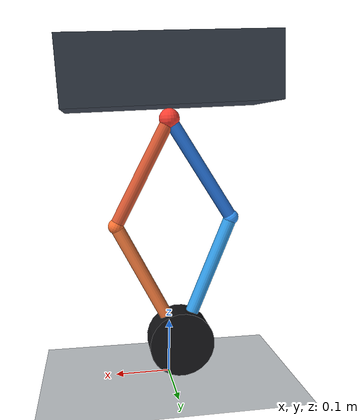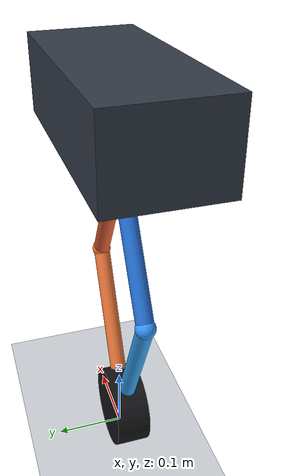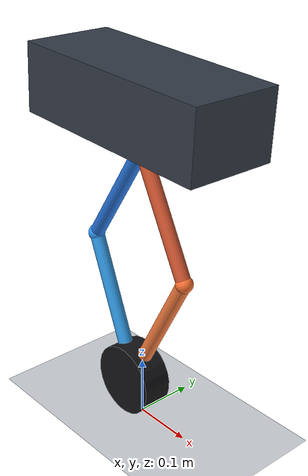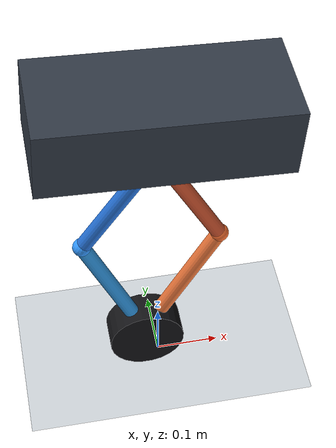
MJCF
<mujoco model="five_link_wheel_leg_2d_fall_test">
  <compiler angle="degree" autolimits="true"/>

  <option timestep="0.001"
          gravity="0 0 -9.81"
          integrator="implicitfast"
          solver="Newton"
          iterations="100"/>

  <visual>
    <headlight ambient="0.35 0.35 0.35" diffuse="0.8 0.8 0.8" specular="0.2 0.2 0.2"/>
    <rgba joint="0.2 0.7 1 1" actuator="0.3 0.8 0.3 1"/>
  </visual>

  <default>
    <joint type="hinge"
           axis="0 1 0"
           damping="0.02"
           armature="0.0005"
           limited="false"/>
    <geom contype="0" conaffinity="1"
          friction="0.8 0.02 0.001"
          condim="3"/>
  </default>

  <worldbody>
    <light name="top_light" pos="0 -1 2" dir="0 0 -1"/>
    <camera name="side" pos="1.25 -1.8 0.85" xyaxes="0.82 0.57 0 -0.22 0.32 0.92"/>

    <geom name="ground"
          type="plane"
          pos="0 0 0"
          size="2 2 0.1"
          rgba="0.82 0.84 0.86 1"
          contype="1" conaffinity="0"/>
    <body name="chassis" pos="0 0 0.4687463609" euler="0 3 0">
      <joint name="base_x"
             type="slide"
             axis="1 0 0"
             damping="0.05"
             limited="false"/>

      <joint name="base_z"
             type="slide"
             axis="0 0 1"
             damping="0.05"
             limited="false"/>

      <joint name="base_pitch"
             type="hinge"
             axis="0 1 0"
             ref="3"
             damping="0.02"
             armature="0.001"
             limited="false"/>

      <geom name="chassis_geom"
            type="box"
            pos="0 0 0.075"
            size="0.18 0.075 0.055"
            mass="18.9"
            rgba="0.20 0.23 0.28 1"/>

      <site name="hip_AE" type="sphere" pos="0 0 0" size="0.018" rgba="1 0.25 0.2 1"/>
      <body name="link_AB" pos="0 0 0" euler="0 120 0">
        <joint name="q1" pos="0 0 0" axis="0 1 0" ref="120"/>

        <geom name="AB_geom"
              type="capsule"
              fromto="0 0 0  0.21 0 0"
              size="0.012"
              mass="0.2375"
              rgba="0.15 0.45 0.85 1"/>
        <site name="B" type="sphere" pos="0.21 0 0" size="0.014" rgba="0.2 0.6 1 1"/>

        <body name="link_BC" pos="0.21 0 0" euler="0 -54.83458749 0">
          <joint name="q2_passive" pos="0 0 0" axis="0 1 0" ref="-54.83458749"/>

          <geom name="BC_geom"
                type="capsule"
                fromto="0 0 0  0.25 0 0"
                size="0.012"
                mass="0.2375"
                rgba="0.20 0.62 0.92 1"/>

          <body name="wheel" pos="0.25 0 0">
            <joint name="wheel_joint" pos="0 0 0" axis="0 1 0"
                   damping="0.002" armature="0.001"/>

            <geom name="wheel_geom"
                  type="cylinder"
                  size="0.06 0.025"
                  euler="90 0 0"
                  mass="0.6"
                  rgba="0.08 0.08 0.09 1"
                  contype="0" conaffinity="1"
                  friction="1.0 0.02 0.001"/>

            <site name="C_left" type="sphere" pos="0 0 0" size="0.016" rgba="1 0.8 0.1 1"/>
          </body>
        </body>
      </body>

      <body name="link_ED" pos="0 0 0" euler="0 60 0">
        <joint name="q4" pos="0 0 0" axis="0 1 0" ref="60"/>

        <geom name="ED_geom"
              type="capsule"
              fromto="0 0 0  0.21 0 0"
              size="0.012"
              mass="0.2375"
              rgba="0.85 0.35 0.20 1"/>
        <site name="D" type="sphere" pos="0.21 0 0" size="0.014" rgba="1 0.45 0.2 1"/>

        <body name="link_DC" pos="0.21 0 0" euler="0 54.83458749 0">
          <joint name="q3_passive" pos="0 0 0" axis="0 1 0" ref="54.83458749"/>

          <geom name="DC_geom"
                type="capsule"
                fromto="0 0 0  0.25 0 0"
                size="0.012"
                mass="0.2375"
                rgba="0.95 0.48 0.24 1"/>

          <site name="C_right" type="sphere" pos="0.25 0 0" size="0.012" rgba="0.8 0.1 0.8 0.8"/>
        </body>
      </body>
    </body>
  </worldbody>

  <equality>
    <connect name="five_link_closure"
             site1="C_left"
             site2="C_right"
             solref="0.002 1"
             solimp="0.95 0.99 0.001"/>
  </equality>

  <actuator>
    <motor name="hip_q1_motor" joint="q1" gear="1" ctrlrange="-20 20"/>
    <motor name="hip_q4_motor" joint="q4" gear="1" ctrlrange="-20 20"/>
    <motor name="wheel_motor"  joint="wheel_joint" gear="1" ctrlrange="-10 10"/>
  </actuator>

  <sensor>
    <jointpos name="base_x_pos" joint="base_x"/>
    <jointvel name="base_x_vel" joint="base_x"/>
    <jointpos name="base_z_pos" joint="base_z"/>
    <jointvel name="base_z_vel" joint="base_z"/>
    <jointpos name="base_pitch_pos" joint="base_pitch"/>
    <jointvel name="base_pitch_vel" joint="base_pitch"/>

    <jointpos name="q1_pos" joint="q1"/>
    <jointvel name="q1_vel" joint="q1"/>
    <jointpos name="q4_pos" joint="q4"/>
    <jointvel name="q4_vel" joint="q4"/>
    <jointpos name="wheel_pos" joint="wheel_joint"/>
    <jointvel name="wheel_vel" joint="wheel_joint"/>
    <framepos name="C_world_pos" objtype="site" objname="C_left"/>
  </sensor>
</mujoco>
